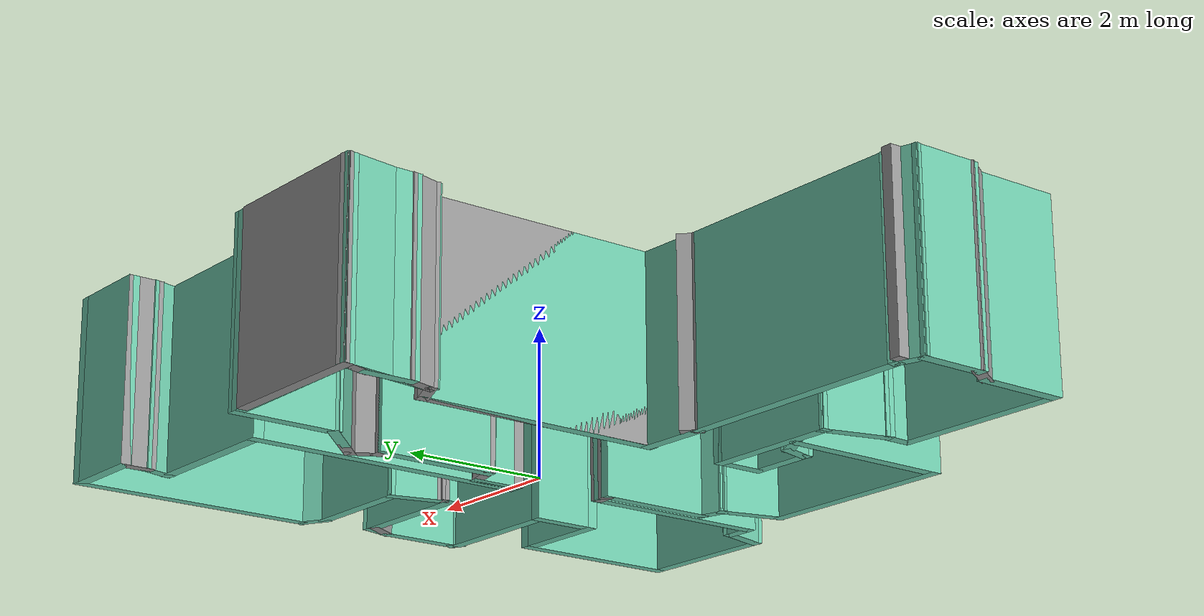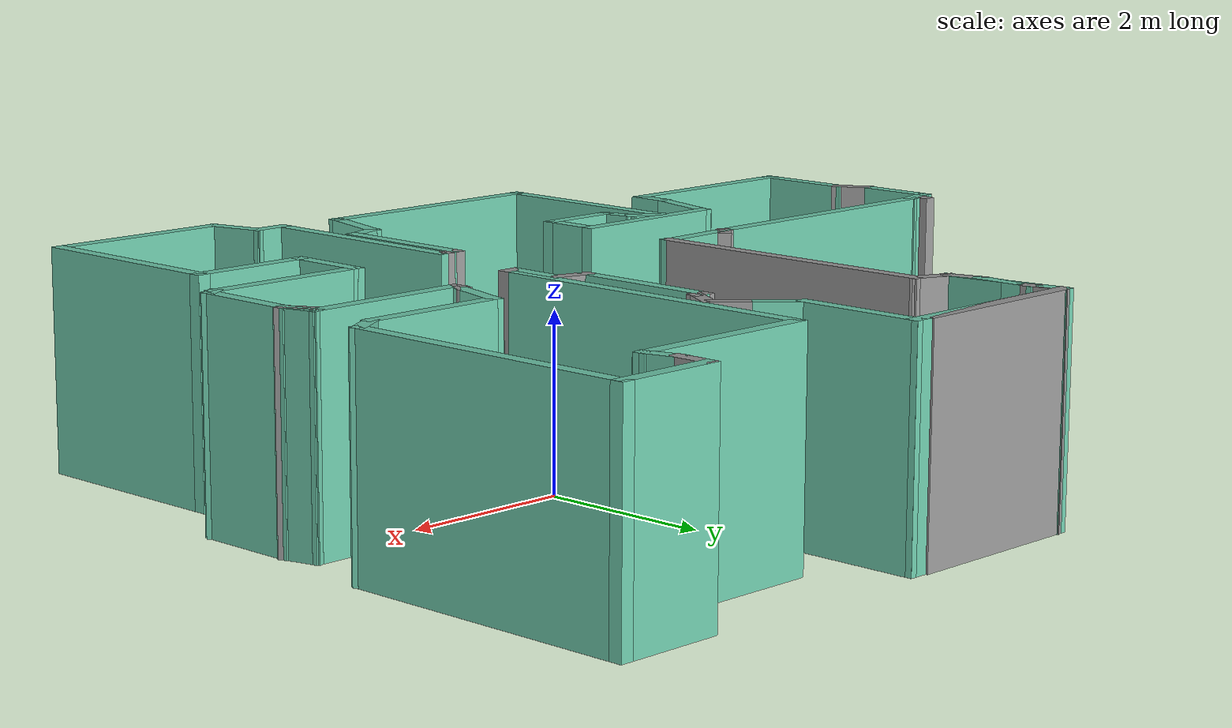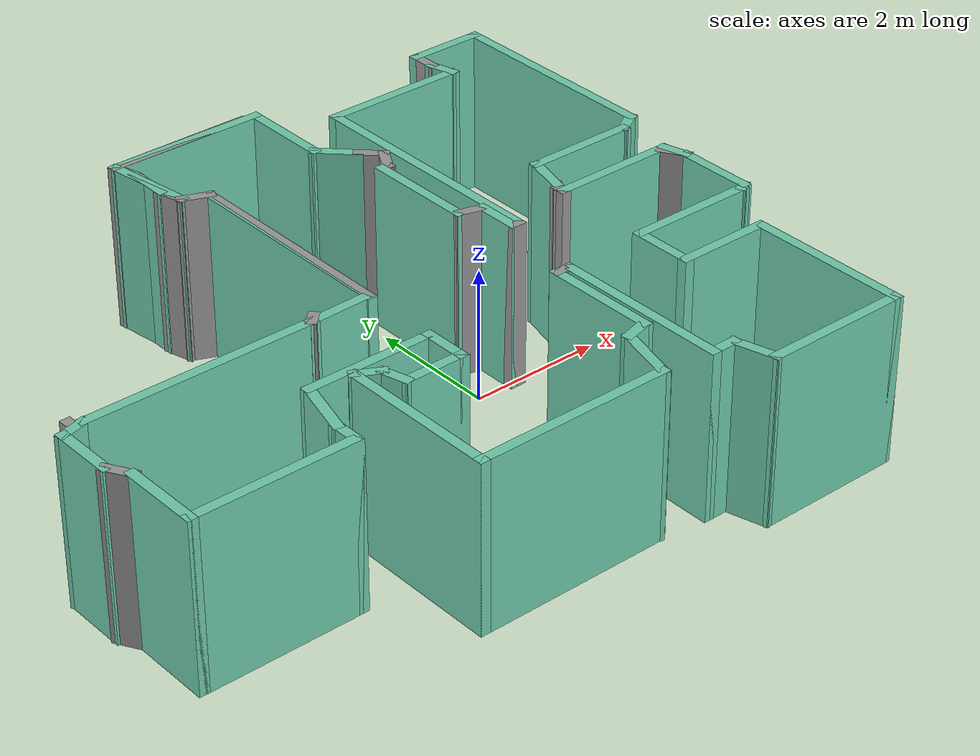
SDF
<?xml version='1.0'?>
<sdf version='1.6'>
  <model name='map_77'>
    <pose frame=''>-1.39686 0.071104 0 0 -0 0</pose>
    <link name='Wall_0'>
      <collision name='Wall_0_Collision'>
        <geometry>
          <box>
            <size>2.25 0.15 2.5</size>
          </box>
        </geometry>
        <pose frame=''>0 0 1.25 0 -0 0</pose>
      </collision>
      <visual name='Wall_0_Visual'>
        <pose frame=''>0 0 1.25 0 -0 0</pose>
        <geometry>
          <box>
            <size>2.25 0.15 2.5</size>
          </box>
        </geometry>
        <material>
          <script>
            <uri>file://media/materials/scripts/gazebo.material</uri>
            <name>Gazebo/Grey</name>
          </script>
          <ambient>1 1 1 1</ambient>
        </material>
        <meta>
          <layer>0</layer>
        </meta>
      </visual>
      <pose frame=''>-0.055748 4.53933 0 0 -0 3.14159</pose>
    </link>
    <link name='Wall_1'>
      <collision name='Wall_1_Collision'>
        <geometry>
          <box>
            <size>0.5 0.15 2.5</size>
          </box>
        </geometry>
        <pose frame=''>0 0 1.25 0 -0 0</pose>
      </collision>
      <visual name='Wall_1_Visual'>
        <pose frame=''>0 0 1.25 0 -0 0</pose>
        <geometry>
          <box>
            <size>0.5 0.15 2.5</size>
          </box>
        </geometry>
        <material>
          <script>
            <uri>file://media/materials/scripts/gazebo.material</uri>
            <name>Gazebo/Grey</name>
          </script>
          <ambient>1 1 1 1</ambient>
        </material>
        <meta>
          <layer>0</layer>
        </meta>
      </visual>
      <pose frame=''>-1.06045 4.37029 0 0 -0 -1.309</pose>
    </link>
    <link name='Wall_10'>
      <collision name='Wall_10_Collision'>
        <geometry>
          <box>
            <size>0.5 0.15 2.5</size>
          </box>
        </geometry>
        <pose frame=''>0 0 1.25 0 -0 0</pose>
      </collision>
      <visual name='Wall_10_Visual'>
        <pose frame=''>0 0 1.25 0 -0 0</pose>
        <geometry>
          <box>
            <size>0.5 0.15 2.5</size>
          </box>
        </geometry>
        <material>
          <script>
            <uri>file://media/materials/scripts/gazebo.material</uri>
            <name>Gazebo/Grey</name>
          </script>
          <ambient>0.435294 0.796078 0.67451 1</ambient>
        </material>
        <meta>
          <layer>0</layer>
        </meta>
      </visual>
      <pose frame=''>-4.9905 -0.307109 0 0 -0 -2.87979</pose>
    </link>
    <link name='Wall_11'>
      <collision name='Wall_11_Collision'>
        <geometry>
          <box>
            <size>1 0.15 2.5</size>
          </box>
        </geometry>
        <pose frame=''>0 0 1.25 0 -0 0</pose>
      </collision>
      <visual name='Wall_11_Visual'>
        <pose frame=''>0 0 1.25 0 -0 0</pose>
        <geometry>
          <box>
            <size>1 0.15 2.5</size>
          </box>
        </geometry>
        <material>
          <script>
            <uri>file://media/materials/scripts/gazebo.material</uri>
            <name>Gazebo/Grey</name>
          </script>
          <ambient>0.435294 0.796078 0.67451 1</ambient>
        </material>
        <meta>
          <layer>0</layer>
        </meta>
      </visual>
      <pose frame=''>-5.15954 -0.777402 0 0 -0 -1.5708</pose>
    </link>
    <link name='Wall_12'>
      <collision name='Wall_12_Collision'>
        <geometry>
          <box>
            <size>0.5 0.15 2.5</size>
          </box>
        </geometry>
        <pose frame=''>0 0 1.25 0 -0 0</pose>
      </collision>
      <visual name='Wall_12_Visual'>
        <pose frame=''>0 0 1.25 0 -0 0</pose>
        <geometry>
          <box>
            <size>0.5 0.15 2.5</size>
          </box>
        </geometry>
        <material>
          <script>
            <uri>file://media/materials/scripts/gazebo.material</uri>
            <name>Gazebo/Grey</name>
          </script>
          <ambient>1 1 1 1</ambient>
        </material>
        <meta>
          <layer>0</layer>
        </meta>
      </visual>
      <pose frame=''>-5.07204 -1.35396 0 0 -0 -1.0472</pose>
    </link>
    <link name='Wall_13'>
      <collision name='Wall_13_Collision'>
        <geometry>
          <box>
            <size>1.25 0.15 2.5</size>
          </box>
        </geometry>
        <pose frame=''>0 0 1.25 0 -0 0</pose>
      </collision>
      <visual name='Wall_13_Visual'>
        <pose frame=''>0 0 1.25 0 -0 0</pose>
        <geometry>
          <box>
            <size>1.25 0.15 2.5</size>
          </box>
        </geometry>
        <material>
          <script>
            <uri>file://media/materials/scripts/gazebo.material</uri>
            <name>Gazebo/Grey</name>
          </script>
          <ambient>0.435294 0.796078 0.67451 1</ambient>
        </material>
        <meta>
          <layer>0</layer>
        </meta>
      </visual>
      <pose frame=''>-4.98454 -2.05551 0 0 -0 -1.5708</pose>
    </link>
    <link name='Wall_14'>
      <collision name='Wall_14_Collision'>
        <geometry>
          <box>
            <size>2.5 0.15 2.5</size>
          </box>
        </geometry>
        <pose frame=''>0 0 1.25 0 -0 0</pose>
      </collision>
      <visual name='Wall_14_Visual'>
        <pose frame=''>0 0 1.25 0 -0 0</pose>
        <geometry>
          <box>
            <size>2.5 0.15 2.5</size>
          </box>
        </geometry>
        <material>
          <script>
            <uri>file://media/materials/scripts/gazebo.material</uri>
            <name>Gazebo/Grey</name>
          </script>
          <ambient>0.435294 0.796078 0.67451 1</ambient>
        </material>
        <meta>
          <layer>0</layer>
        </meta>
      </visual>
      <pose frame=''>-3.80954 -2.60551 0 0 -0 0</pose>
    </link>
    <link name='Wall_15'>
      <collision name='Wall_15_Collision'>
        <geometry>
          <box>
            <size>0.5 0.15 2.5</size>
          </box>
        </geometry>
        <pose frame=''>0 0 1.25 0 -0 0</pose>
      </collision>
      <visual name='Wall_15_Visual'>
        <pose frame=''>0 0 1.25 0 -0 0</pose>
        <geometry>
          <box>
            <size>0.5 0.15 2.5</size>
          </box>
        </geometry>
        <material>
          <script>
            <uri>file://media/materials/scripts/gazebo.material</uri>
            <name>Gazebo/Grey</name>
          </script>
          <ambient>0.435294 0.796078 0.67451 1</ambient>
        </material>
        <meta>
          <layer>0</layer>
        </meta>
      </visual>
      <pose frame=''>-2.63454 -2.43051 0 0 -0 1.5708</pose>
    </link>
    <link name='Wall_16'>
      <collision name='Wall_16_Collision'>
        <geometry>
          <box>
            <size>1 0.15 2.5</size>
          </box>
        </geometry>
        <pose frame=''>0 0 1.25 0 -0 0</pose>
      </collision>
      <visual name='Wall_16_Visual'>
        <pose frame=''>0 0 1.25 0 -0 0</pose>
        <geometry>
          <box>
            <size>1 0.15 2.5</size>
          </box>
        </geometry>
        <material>
          <script>
            <uri>file://media/materials/scripts/gazebo.material</uri>
            <name>Gazebo/Grey</name>
          </script>
          <ambient>0.435294 0.796078 0.67451 1</ambient>
        </material>
        <meta>
          <layer>0</layer>
        </meta>
      </visual>
      <pose frame=''>-2.52454 -1.84499 0 0 -0 1.309</pose>
    </link>
    <link name='Wall_17'>
      <collision name='Wall_17_Collision'>
        <geometry>
          <box>
            <size>2 0.15 2.5</size>
          </box>
        </geometry>
        <pose frame=''>0 0 1.25 0 -0 0</pose>
      </collision>
      <visual name='Wall_17_Visual'>
        <pose frame=''>0 0 1.25 0 -0 0</pose>
        <geometry>
          <box>
            <size>2 0.15 2.5</size>
          </box>
        </geometry>
        <material>
          <script>
            <uri>file://media/materials/scripts/gazebo.material</uri>
            <name>Gazebo/Grey</name>
          </script>
          <ambient>0.435294 0.796078 0.67451 1</ambient>
        </material>
        <meta>
          <layer>0</layer>
        </meta>
      </visual>
      <pose frame=''>-1.48954 -1.43447 0 0 -0 0</pose>
    </link>
    <link name='Wall_18'>
      <collision name='Wall_18_Collision'>
        <geometry>
          <box>
            <size>0.75 0.15 2.5</size>
          </box>
        </geometry>
        <pose frame=''>0 0 1.25 0 -0 0</pose>
      </collision>
      <visual name='Wall_18_Visual'>
        <pose frame=''>0 0 1.25 0 -0 0</pose>
        <geometry>
          <box>
            <size>0.75 0.15 2.5</size>
          </box>
        </geometry>
        <material>
          <script>
            <uri>file://media/materials/scripts/gazebo.material</uri>
            <name>Gazebo/Grey</name>
          </script>
          <ambient>0.435294 0.796078 0.67451 1</ambient>
        </material>
        <meta>
          <layer>0</layer>
        </meta>
      </visual>
      <pose frame=''>-0.564543 -1.73447 0 0 -0 -1.5708</pose>
    </link>
    <link name='Wall_19'>
      <collision name='Wall_19_Collision'>
        <geometry>
          <box>
            <size>1 0.15 2.5</size>
          </box>
        </geometry>
        <pose frame=''>0 0 1.25 0 -0 0</pose>
      </collision>
      <visual name='Wall_19_Visual'>
        <pose frame=''>0 0 1.25 0 -0 0</pose>
        <geometry>
          <box>
            <size>1 0.15 2.5</size>
          </box>
        </geometry>
        <material>
          <script>
            <uri>file://media/materials/scripts/gazebo.material</uri>
            <name>Gazebo/Grey</name>
          </script>
          <ambient>0.435294 0.796078 0.67451 1</ambient>
        </material>
        <meta>
          <layer>0</layer>
        </meta>
      </visual>
      <pose frame=''>-0.989543 -2.03447 0 0 -0 3.14159</pose>
    </link>
    <link name='Wall_2'>
      <collision name='Wall_2_Collision'>
        <geometry>
          <box>
            <size>0.75 0.15 2.5</size>
          </box>
        </geometry>
        <pose frame=''>0 0 1.25 0 -0 0</pose>
      </collision>
      <visual name='Wall_2_Visual'>
        <pose frame=''>0 0 1.25 0 -0 0</pose>
        <geometry>
          <box>
            <size>0.75 0.15 2.5</size>
          </box>
        </geometry>
        <material>
          <script>
            <uri>file://media/materials/scripts/gazebo.material</uri>
            <name>Gazebo/Grey</name>
          </script>
          <ambient>0.435294 0.796078 0.67451 1</ambient>
        </material>
        <meta>
          <layer>0</layer>
        </meta>
      </visual>
      <pose frame=''>-1.01516 3.90126 0 0 -0 -1.5708</pose>
    </link>
    <link name='Wall_20'>
      <collision name='Wall_20_Collision'>
        <geometry>
          <box>
            <size>0.5 0.15 2.5</size>
          </box>
        </geometry>
        <pose frame=''>0 0 1.25 0 -0 0</pose>
      </collision>
      <visual name='Wall_20_Visual'>
        <pose frame=''>0 0 1.25 0 -0 0</pose>
        <geometry>
          <box>
            <size>0.5 0.15 2.5</size>
          </box>
        </geometry>
        <material>
          <script>
            <uri>file://media/materials/scripts/gazebo.material</uri>
            <name>Gazebo/Grey</name>
          </script>
          <ambient>0.435294 0.796078 0.67451 1</ambient>
        </material>
        <meta>
          <layer>0</layer>
        </meta>
      </visual>
      <pose frame=''>-1.45984 -1.86544 0 0 -0 1.8326</pose>
    </link>
    <link name='Wall_21'>
      <collision name='Wall_21_Collision'>
        <geometry>
          <box>
            <size>0.5 0.15 2.5</size>
          </box>
        </geometry>
        <pose frame=''>0 0 1.25 0 -0 0</pose>
      </collision>
      <visual name='Wall_21_Visual'>
        <pose frame=''>0 0 1.25 0 -0 0</pose>
        <geometry>
          <box>
            <size>0.5 0.15 2.5</size>
          </box>
        </geometry>
        <material>
          <script>
            <uri>file://media/materials/scripts/gazebo.material</uri>
            <name>Gazebo/Grey</name>
          </script>
          <ambient>0.435294 0.796078 0.67451 1</ambient>
        </material>
        <meta>
          <layer>0</layer>
        </meta>
      </visual>
      <pose frame=''>-1.65668 -1.6089 0 0 -0 2.61799</pose>
    </link>
    <link name='Wall_22'>
      <collision name='Wall_22_Collision'>
        <geometry>
          <box>
            <size>2.5 0.15 2.5</size>
          </box>
        </geometry>
        <pose frame=''>0 0 1.25 0 -0 0</pose>
      </collision>
      <visual name='Wall_22_Visual'>
        <pose frame=''>0 0 1.25 0 -0 0</pose>
        <geometry>
          <box>
            <size>2.5 0.15 2.5</size>
          </box>
        </geometry>
        <material>
          <script>
            <uri>file://media/materials/scripts/gazebo.material</uri>
            <name>Gazebo/Grey</name>
          </script>
          <ambient>0.435294 0.796078 0.67451 1</ambient>
        </material>
        <meta>
          <layer>0</layer>
        </meta>
      </visual>
      <pose frame=''>-1.80824 -2.6964 0 0 -0 -1.5708</pose>
    </link>
    <link name='Wall_23'>
      <collision name='Wall_23_Collision'>
        <geometry>
          <box>
            <size>3 0.15 2.5</size>
          </box>
        </geometry>
        <pose frame=''>0 0 1.25 0 -0 0</pose>
      </collision>
      <visual name='Wall_23_Visual'>
        <pose frame=''>0 0 1.25 0 -0 0</pose>
        <geometry>
          <box>
            <size>3 0.15 2.5</size>
          </box>
        </geometry>
        <material>
          <script>
            <uri>file://media/materials/scripts/gazebo.material</uri>
            <name>Gazebo/Grey</name>
          </script>
          <ambient>0.435294 0.796078 0.67451 1</ambient>
        </material>
        <meta>
          <layer>0</layer>
        </meta>
      </visual>
      <pose frame=''>-0.383239 -3.8714 0 0 -0 0</pose>
    </link>
    <link name='Wall_24'>
      <collision name='Wall_24_Collision'>
        <geometry>
          <box>
            <size>1 0.15 2.5</size>
          </box>
        </geometry>
        <pose frame=''>0 0 1.25 0 -0 0</pose>
      </collision>
      <visual name='Wall_24_Visual'>
        <pose frame=''>0 0 1.25 0 -0 0</pose>
        <geometry>
          <box>
            <size>1 0.15 2.5</size>
          </box>
        </geometry>
        <material>
          <script>
            <uri>file://media/materials/scripts/gazebo.material</uri>
            <name>Gazebo/Grey</name>
          </script>
          <ambient>0.435294 0.796078 0.67451 1</ambient>
        </material>
        <meta>
          <layer>0</layer>
        </meta>
      </visual>
      <pose frame=''>1.15176 -3.46088 0 0 -0 1.309</pose>
    </link>
    <link name='Wall_25'>
      <collision name='Wall_25_Collision'>
        <geometry>
          <box>
            <size>0.5 0.15 2.5</size>
          </box>
        </geometry>
        <pose frame=''>0 0 1.25 0 -0 0</pose>
      </collision>
      <visual name='Wall_25_Visual'>
        <pose frame=''>0 0 1.25 0 -0 0</pose>
        <geometry>
          <box>
            <size>0.5 0.15 2.5</size>
          </box>
        </geometry>
        <material>
          <script>
            <uri>file://media/materials/scripts/gazebo.material</uri>
            <name>Gazebo/Grey</name>
          </script>
          <ambient>0.435294 0.796078 0.67451 1</ambient>
        </material>
        <meta>
          <layer>0</layer>
        </meta>
      </visual>
      <pose frame=''>1.4308 -3.00507 0 0 -0 0.261799</pose>
    </link>
    <link name='Wall_26'>
      <collision name='Wall_26_Collision'>
        <geometry>
          <box>
            <size>1.75 0.15 2.5</size>
          </box>
        </geometry>
        <pose frame=''>0 0 1.25 0 -0 0</pose>
      </collision>
      <visual name='Wall_26_Visual'>
        <pose frame=''>0 0 1.25 0 -0 0</pose>
        <geometry>
          <box>
            <size>1.75 0.15 2.5</size>
          </box>
        </geometry>
        <material>
          <script>
            <uri>file://media/materials/scripts/gazebo.material</uri>
            <name>Gazebo/Grey</name>
          </script>
          <ambient>0.435294 0.796078 0.67451 1</ambient>
        </material>
        <meta>
          <layer>0</layer>
        </meta>
      </visual>
      <pose frame=''>1.59983 -2.15978 0 0 -0 1.5708</pose>
    </link>
    <link name='Wall_27'>
      <collision name='Wall_27_Collision'>
        <geometry>
          <box>
            <size>0.25 0.15 2.5</size>
          </box>
        </geometry>
        <pose frame=''>0 0 1.25 0 -0 0</pose>
      </collision>
      <visual name='Wall_27_Visual'>
        <pose frame=''>0 0 1.25 0 -0 0</pose>
        <geometry>
          <box>
            <size>0.25 0.15 2.5</size>
          </box>
        </geometry>
        <material>
          <script>
            <uri>file://media/materials/scripts/gazebo.material</uri>
            <name>Gazebo/Grey</name>
          </script>
          <ambient>1 1 1 1</ambient>
        </material>
        <meta>
          <layer>0</layer>
        </meta>
      </visual>
      <pose frame=''>1.64983 -1.35978 0 0 -0 0</pose>
    </link>
    <link name='Wall_28'>
      <collision name='Wall_28_Collision'>
        <geometry>
          <box>
            <size>0.25 0.15 2.5</size>
          </box>
        </geometry>
        <pose frame=''>0 0 1.25 0 -0 0</pose>
      </collision>
      <visual name='Wall_28_Visual'>
        <pose frame=''>0 0 1.25 0 -0 0</pose>
        <geometry>
          <box>
            <size>0.25 0.15 2.5</size>
          </box>
        </geometry>
        <material>
          <script>
            <uri>file://media/materials/scripts/gazebo.material</uri>
            <name>Gazebo/Grey</name>
          </script>
          <ambient>1 1 1 1</ambient>
        </material>
        <meta>
          <layer>0</layer>
        </meta>
      </visual>
      <pose frame=''>1.74983 -1.35978 0 0 -0 0</pose>
    </link>
    <link name='Wall_29'>
      <collision name='Wall_29_Collision'>
        <geometry>
          <box>
            <size>2.75 0.15 2.5</size>
          </box>
        </geometry>
        <pose frame=''>0 0 1.25 0 -0 0</pose>
      </collision>
      <visual name='Wall_29_Visual'>
        <pose frame=''>0 0 1.25 0 -0 0</pose>
        <geometry>
          <box>
            <size>2.75 0.15 2.5</size>
          </box>
        </geometry>
        <material>
          <script>
            <uri>file://media/materials/scripts/gazebo.material</uri>
            <name>Gazebo/Grey</name>
          </script>
          <ambient>0.435294 0.796078 0.67451 1</ambient>
        </material>
        <meta>
          <layer>0</layer>
        </meta>
      </visual>
      <pose frame=''>1.79983 -2.65978 0 0 -0 -1.5708</pose>
    </link>
    <link name='Wall_3'>
      <collision name='Wall_3_Collision'>
        <geometry>
          <box>
            <size>0.5 0.15 2.5</size>
          </box>
        </geometry>
        <pose frame=''>0 0 1.25 0 -0 0</pose>
      </collision>
      <visual name='Wall_3_Visual'>
        <pose frame=''>0 0 1.25 0 -0 0</pose>
        <geometry>
          <box>
            <size>0.5 0.15 2.5</size>
          </box>
        </geometry>
        <material>
          <script>
            <uri>file://media/materials/scripts/gazebo.material</uri>
            <name>Gazebo/Grey</name>
          </script>
          <ambient>1 1 1 1</ambient>
        </material>
        <meta>
          <layer>0</layer>
        </meta>
      </visual>
      <pose frame=''>-0.969868 3.43222 0 0 -0 -1.309</pose>
    </link>
    <link name='Wall_30'>
      <collision name='Wall_30_Collision'>
        <geometry>
          <box>
            <size>0.5 0.15 2.5</size>
          </box>
        </geometry>
        <pose frame=''>0 0 1.25 0 -0 0</pose>
      </collision>
      <visual name='Wall_30_Visual'>
        <pose frame=''>0 0 1.25 0 -0 0</pose>
        <geometry>
          <box>
            <size>0.5 0.15 2.5</size>
          </box>
        </geometry>
        <material>
          <script>
            <uri>file://media/materials/scripts/gazebo.material</uri>
            <name>Gazebo/Grey</name>
          </script>
          <ambient>0.435294 0.796078 0.67451 1</ambient>
        </material>
        <meta>
          <layer>0</layer>
        </meta>
      </visual>
      <pose frame=''>1.97483 -3.95978 0 0 -0 0</pose>
    </link>
    <link name='Wall_31'>
      <collision name='Wall_31_Collision'>
        <geometry>
          <box>
            <size>0.75 0.15 2.5</size>
          </box>
        </geometry>
        <pose frame=''>0 0 1.25 0 -0 0</pose>
      </collision>
      <visual name='Wall_31_Visual'>
        <pose frame=''>0 0 1.25 0 -0 0</pose>
        <geometry>
          <box>
            <size>0.75 0.15 2.5</size>
          </box>
        </geometry>
        <material>
          <script>
            <uri>file://media/materials/scripts/gazebo.material</uri>
            <name>Gazebo/Grey</name>
          </script>
          <ambient>0.435294 0.796078 0.67451 1</ambient>
        </material>
        <meta>
          <layer>0</layer>
        </meta>
      </visual>
      <pose frame=''>2.22748 -4.24955 0 0 -0 -1.309</pose>
    </link>
    <link name='Wall_32'>
      <collision name='Wall_32_Collision'>
        <geometry>
          <box>
            <size>2.25 0.15 2.5</size>
          </box>
        </geometry>
        <pose frame=''>0 0 1.25 0 -0 0</pose>
      </collision>
      <visual name='Wall_32_Visual'>
        <pose frame=''>0 0 1.25 0 -0 0</pose>
        <geometry>
          <box>
            <size>2.25 0.15 2.5</size>
          </box>
        </geometry>
        <material>
          <script>
            <uri>file://media/materials/scripts/gazebo.material</uri>
            <name>Gazebo/Grey</name>
          </script>
          <ambient>0.435294 0.796078 0.67451 1</ambient>
        </material>
        <meta>
          <layer>0</layer>
        </meta>
      </visual>
      <pose frame=''>3.35512 -4.53933 0 0 -0 0</pose>
    </link>
    <link name='Wall_33'>
      <collision name='Wall_33_Collision'>
        <geometry>
          <box>
            <size>2.5 0.15 2.5</size>
          </box>
        </geometry>
        <pose frame=''>0 0 1.25 0 -0 0</pose>
      </collision>
      <visual name='Wall_33_Visual'>
        <pose frame=''>0 0 1.25 0 -0 0</pose>
        <geometry>
          <box>
            <size>2.5 0.15 2.5</size>
          </box>
        </geometry>
        <material>
          <script>
            <uri>file://media/materials/scripts/gazebo.material</uri>
            <name>Gazebo/Grey</name>
          </script>
          <ambient>0.435294 0.796078 0.67451 1</ambient>
        </material>
        <meta>
          <layer>0</layer>
        </meta>
      </visual>
      <pose frame=''>4.40512 -3.36433 0 0 -0 1.5708</pose>
    </link>
    <link name='Wall_34'>
      <collision name='Wall_34_Collision'>
        <geometry>
          <box>
            <size>1.5 0.15 2.5</size>
          </box>
        </geometry>
        <pose frame=''>0 0 1.25 0 -0 0</pose>
      </collision>
      <visual name='Wall_34_Visual'>
        <pose frame=''>0 0 1.25 0 -0 0</pose>
        <geometry>
          <box>
            <size>1.5 0.15 2.5</size>
          </box>
        </geometry>
        <material>
          <script>
            <uri>file://media/materials/scripts/gazebo.material</uri>
            <name>Gazebo/Grey</name>
          </script>
          <ambient>0.435294 0.796078 0.67451 1</ambient>
        </material>
        <meta>
          <layer>0</layer>
        </meta>
      </visual>
      <pose frame=''>3.73012 -2.18933 0 0 -0 3.14159</pose>
    </link>
    <link name='Wall_35'>
      <collision name='Wall_35_Collision'>
        <geometry>
          <box>
            <size>1 0.15 2.5</size>
          </box>
        </geometry>
        <pose frame=''>0 0 1.25 0 -0 0</pose>
      </collision>
      <visual name='Wall_35_Visual'>
        <pose frame=''>0 0 1.25 0 -0 0</pose>
        <geometry>
          <box>
            <size>1 0.15 2.5</size>
          </box>
        </geometry>
        <material>
          <script>
            <uri>file://media/materials/scripts/gazebo.material</uri>
            <name>Gazebo/Grey</name>
          </script>
          <ambient>0.435294 0.796078 0.67451 1</ambient>
        </material>
        <meta>
          <layer>0</layer>
        </meta>
      </visual>
      <pose frame=''>3.05512 -1.76433 0 0 -0 1.5708</pose>
    </link>
    <link name='Wall_36'>
      <collision name='Wall_36_Collision'>
        <geometry>
          <box>
            <size>2 0.15 2.5</size>
          </box>
        </geometry>
        <pose frame=''>0 0 1.25 0 -0 0</pose>
      </collision>
      <visual name='Wall_36_Visual'>
        <pose frame=''>0 0 1.25 0 -0 0</pose>
        <geometry>
          <box>
            <size>2 0.15 2.5</size>
          </box>
        </geometry>
        <material>
          <script>
            <uri>file://media/materials/scripts/gazebo.material</uri>
            <name>Gazebo/Grey</name>
          </script>
          <ambient>0.435294 0.796078 0.67451 1</ambient>
        </material>
        <meta>
          <layer>0</layer>
        </meta>
      </visual>
      <pose frame=''>3.98012 -1.33933 0 0 -0 0</pose>
    </link>
    <link name='Wall_37'>
      <collision name='Wall_37_Collision'>
        <geometry>
          <box>
            <size>0.25 0.15 2.5</size>
          </box>
        </geometry>
        <pose frame=''>0 0 1.25 0 -0 0</pose>
      </collision>
      <visual name='Wall_37_Visual'>
        <pose frame=''>0 0 1.25 0 -0 0</pose>
        <geometry>
          <box>
            <size>0.25 0.15 2.5</size>
          </box>
        </geometry>
        <material>
          <script>
            <uri>file://media/materials/scripts/gazebo.material</uri>
            <name>Gazebo/Grey</name>
          </script>
          <ambient>0.435294 0.796078 0.67451 1</ambient>
        </material>
        <meta>
          <layer>0</layer>
        </meta>
      </visual>
      <pose frame=''>4.94842 -1.31433 0 0 -0 0.523599</pose>
    </link>
    <link name='Wall_38'>
      <collision name='Wall_38_Collision'>
        <geometry>
          <box>
            <size>1.25 0.15 2.5</size>
          </box>
        </geometry>
        <pose frame=''>0 0 1.25 0 -0 0</pose>
      </collision>
      <visual name='Wall_38_Visual'>
        <pose frame=''>0 0 1.25 0 -0 0</pose>
        <geometry>
          <box>
            <size>1.25 0.15 2.5</size>
          </box>
        </geometry>
        <material>
          <script>
            <uri>file://media/materials/scripts/gazebo.material</uri>
            <name>Gazebo/Grey</name>
          </script>
          <ambient>0.435294 0.796078 0.67451 1</ambient>
        </material>
        <meta>
          <layer>0</layer>
        </meta>
      </visual>
      <pose frame=''>4.99173 -0.739332 0 0 -0 1.5708</pose>
    </link>
    <link name='Wall_39'>
      <collision name='Wall_39_Collision'>
        <geometry>
          <box>
            <size>0.5 0.15 2.5</size>
          </box>
        </geometry>
        <pose frame=''>0 0 1.25 0 -0 0</pose>
      </collision>
      <visual name='Wall_39_Visual'>
        <pose frame=''>0 0 1.25 0 -0 0</pose>
        <geometry>
          <box>
            <size>0.5 0.15 2.5</size>
          </box>
        </geometry>
        <material>
          <script>
            <uri>file://media/materials/scripts/gazebo.material</uri>
            <name>Gazebo/Grey</name>
          </script>
          <ambient>1 1 1 1</ambient>
        </material>
        <meta>
          <layer>0</layer>
        </meta>
      </visual>
      <pose frame=''>4.90423 -0.037778 0 0 -0 2.0944</pose>
    </link>
    <link name='Wall_4'>
      <collision name='Wall_4_Collision'>
        <geometry>
          <box>
            <size>0.535978 0.15 2.5</size>
          </box>
        </geometry>
        <pose frame=''>0 0 1.25 0 -0 0</pose>
      </collision>
      <visual name='Wall_4_Visual'>
        <pose frame=''>0 0 1.25 0 -0 0</pose>
        <geometry>
          <box>
            <size>0.535978 0.15 2.5</size>
          </box>
        </geometry>
        <material>
          <script>
            <uri>file://media/materials/scripts/gazebo.material</uri>
            <name>Gazebo/Grey</name>
          </script>
          <ambient>1 1 1 1</ambient>
        </material>
        <meta>
          <layer>0</layer>
        </meta>
      </visual>
      <pose frame=''>-0.74642 3.18898 0 0 -0 -0.394642</pose>
    </link>
    <link name='Wall_42'>
      <collision name='Wall_42_Collision'>
        <geometry>
          <box>
            <size>0.5 0.15 2.5</size>
          </box>
        </geometry>
        <pose frame=''>0 0 1.25 0 -0 0</pose>
      </collision>
      <visual name='Wall_42_Visual'>
        <pose frame=''>0 0 1.25 0 -0 0</pose>
        <geometry>
          <box>
            <size>0.5 0.15 2.5</size>
          </box>
        </geometry>
        <material>
          <script>
            <uri>file://media/materials/scripts/gazebo.material</uri>
            <name>Gazebo/Grey</name>
          </script>
          <ambient>0.435294 0.796078 0.67451 1</ambient>
        </material>
        <meta>
          <layer>0</layer>
        </meta>
      </visual>
      <pose frame=''>4.94643 -0.020295 0 0 -0 1.8326</pose>
    </link>
    <link name='Wall_43'>
      <collision name='Wall_43_Collision'>
        <geometry>
          <box>
            <size>2 0.15 2.5</size>
          </box>
        </geometry>
        <pose frame=''>0 0 1.25 0 -0 0</pose>
      </collision>
      <visual name='Wall_43_Visual'>
        <pose frame=''>0 0 1.25 0 -0 0</pose>
        <geometry>
          <box>
            <size>2 0.15 2.5</size>
          </box>
        </geometry>
        <material>
          <script>
            <uri>file://media/materials/scripts/gazebo.material</uri>
            <name>Gazebo/Grey</name>
          </script>
          <ambient>0.435294 0.796078 0.67451 1</ambient>
        </material>
        <meta>
          <layer>0</layer>
        </meta>
      </visual>
      <pose frame=''>3.97614 0.148742 0 0 -0 3.14159</pose>
    </link>
    <link name='Wall_44'>
      <collision name='Wall_44_Collision'>
        <geometry>
          <box>
            <size>0.25 0.15 2.5</size>
          </box>
        </geometry>
        <pose frame=''>0 0 1.25 0 -0 0</pose>
      </collision>
      <visual name='Wall_44_Visual'>
        <pose frame=''>0 0 1.25 0 -0 0</pose>
        <geometry>
          <box>
            <size>0.25 0.15 2.5</size>
          </box>
        </geometry>
        <material>
          <script>
            <uri>file://media/materials/scripts/gazebo.material</uri>
            <name>Gazebo/Grey</name>
          </script>
          <ambient>1 1 1 1</ambient>
        </material>
        <meta>
          <layer>0</layer>
        </meta>
      </visual>
      <pose frame=''>3.05114 0.198742 0 0 -0 1.5708</pose>
    </link>
    <link name='Wall_45'>
      <collision name='Wall_45_Collision'>
        <geometry>
          <box>
            <size>0.25 0.15 2.5</size>
          </box>
        </geometry>
        <pose frame=''>0 0 1.25 0 -0 0</pose>
      </collision>
      <visual name='Wall_45_Visual'>
        <pose frame=''>0 0 1.25 0 -0 0</pose>
        <geometry>
          <box>
            <size>0.25 0.15 2.5</size>
          </box>
        </geometry>
        <material>
          <script>
            <uri>file://media/materials/scripts/gazebo.material</uri>
            <name>Gazebo/Grey</name>
          </script>
          <ambient>1 1 1 1</ambient>
        </material>
        <meta>
          <layer>0</layer>
        </meta>
      </visual>
      <pose frame=''>3.07614 0.292043 0 0 -0 1.0472</pose>
    </link>
    <link name='Wall_46'>
      <collision name='Wall_46_Collision'>
        <geometry>
          <box>
            <size>0.75 0.15 2.5</size>
          </box>
        </geometry>
        <pose frame=''>0 0 1.25 0 -0 0</pose>
      </collision>
      <visual name='Wall_46_Visual'>
        <pose frame=''>0 0 1.25 0 -0 0</pose>
        <geometry>
          <box>
            <size>0.75 0.15 2.5</size>
          </box>
        </geometry>
        <material>
          <script>
            <uri>file://media/materials/scripts/gazebo.material</uri>
            <name>Gazebo/Grey</name>
          </script>
          <ambient>0.435294 0.796078 0.67451 1</ambient>
        </material>
        <meta>
          <layer>0</layer>
        </meta>
      </visual>
      <pose frame=''>3.17878 0.625122 0 0 -0 1.309</pose>
    </link>
    <link name='Wall_47'>
      <collision name='Wall_47_Collision'>
        <geometry>
          <box>
            <size>1.75 0.15 2.5</size>
          </box>
        </geometry>
        <pose frame=''>0 0 1.25 0 -0 0</pose>
      </collision>
      <visual name='Wall_47_Visual'>
        <pose frame=''>0 0 1.25 0 -0 0</pose>
        <geometry>
          <box>
            <size>1.75 0.15 2.5</size>
          </box>
        </geometry>
        <material>
          <script>
            <uri>file://media/materials/scripts/gazebo.material</uri>
            <name>Gazebo/Grey</name>
          </script>
          <ambient>0.435294 0.796078 0.67451 1</ambient>
        </material>
        <meta>
          <layer>0</layer>
        </meta>
      </visual>
      <pose frame=''>4.05643 0.9149 0 0 -0 0</pose>
    </link>
    <link name='Wall_49'>
      <collision name='Wall_49_Collision'>
        <geometry>
          <box>
            <size>0.5 0.15 2.5</size>
          </box>
        </geometry>
        <pose frame=''>0 0 1.25 0 -0 0</pose>
      </collision>
      <visual name='Wall_49_Visual'>
        <pose frame=''>0 0 1.25 0 -0 0</pose>
        <geometry>
          <box>
            <size>0.5 0.15 2.5</size>
          </box>
        </geometry>
        <material>
          <script>
            <uri>file://media/materials/scripts/gazebo.material</uri>
            <name>Gazebo/Grey</name>
          </script>
          <ambient>0.435294 0.796078 0.67451 1</ambient>
        </material>
        <meta>
          <layer>0</layer>
        </meta>
      </visual>
      <pose frame=''>5.00798 1.0024 0 0 -0 0.523599</pose>
    </link>
    <link name='Wall_5'>
      <collision name='Wall_5_Collision'>
        <geometry>
          <box>
            <size>3.5 0.15 2.5</size>
          </box>
        </geometry>
        <pose frame=''>0 0 1.25 0 -0 0</pose>
      </collision>
      <visual name='Wall_5_Visual'>
        <pose frame=''>0 0 1.25 0 -0 0</pose>
        <geometry>
          <box>
            <size>3.5 0.15 2.5</size>
          </box>
        </geometry>
        <material>
          <script>
            <uri>file://media/materials/scripts/gazebo.material</uri>
            <name>Gazebo/Grey</name>
          </script>
          <ambient>1 1 1 1</ambient>
        </material>
        <meta>
          <layer>0</layer>
        </meta>
      </visual>
      <pose frame=''>-0.568265 1.43978 0 0 -0 -1.5708</pose>
    </link>
    <link name='Wall_50'>
      <collision name='Wall_50_Collision'>
        <geometry>
          <box>
            <size>3.5 0.15 2.5</size>
          </box>
        </geometry>
        <pose frame=''>0 0 1.25 0 -0 0</pose>
      </collision>
      <visual name='Wall_50_Visual'>
        <pose frame=''>0 0 1.25 0 -0 0</pose>
        <geometry>
          <box>
            <size>3.5 0.15 2.5</size>
          </box>
        </geometry>
        <material>
          <script>
            <uri>file://media/materials/scripts/gazebo.material</uri>
            <name>Gazebo/Grey</name>
          </script>
          <ambient>0.435294 0.796078 0.67451 1</ambient>
        </material>
        <meta>
          <layer>0</layer>
        </meta>
      </visual>
      <pose frame=''>5.15954 2.7649 0 0 -0 1.5708</pose>
    </link>
    <link name='Wall_51'>
      <collision name='Wall_51_Collision'>
        <geometry>
          <box>
            <size>1.25 0.15 2.5</size>
          </box>
        </geometry>
        <pose frame=''>0 0 1.25 0 -0 0</pose>
      </collision>
      <visual name='Wall_51_Visual'>
        <pose frame=''>0 0 1.25 0 -0 0</pose>
        <geometry>
          <box>
            <size>1.25 0.15 2.5</size>
          </box>
        </geometry>
        <material>
          <script>
            <uri>file://media/materials/scripts/gazebo.material</uri>
            <name>Gazebo/Grey</name>
          </script>
          <ambient>0.435294 0.796078 0.67451 1</ambient>
        </material>
        <meta>
          <layer>0</layer>
        </meta>
      </visual>
      <pose frame=''>4.60954 4.4399 0 0 -0 3.14159</pose>
    </link>
    <link name='Wall_52'>
      <collision name='Wall_52_Collision'>
        <geometry>
          <box>
            <size>0.5 0.15 2.5</size>
          </box>
        </geometry>
        <pose frame=''>0 0 1.25 0 -0 0</pose>
      </collision>
      <visual name='Wall_52_Visual'>
        <pose frame=''>0 0 1.25 0 -0 0</pose>
        <geometry>
          <box>
            <size>0.5 0.15 2.5</size>
          </box>
        </geometry>
        <material>
          <script>
            <uri>file://media/materials/scripts/gazebo.material</uri>
            <name>Gazebo/Grey</name>
          </script>
          <ambient>1 1 1 1</ambient>
        </material>
        <meta>
          <layer>0</layer>
        </meta>
      </visual>
      <pose frame=''>4.05954 4.2649 0 0 -0 -1.5708</pose>
    </link>
    <link name='Wall_56'>
      <collision name='Wall_56_Collision'>
        <geometry>
          <box>
            <size>0.5 0.15 2.5</size>
          </box>
        </geometry>
        <pose frame=''>0 0 1.25 0 -0 0</pose>
      </collision>
      <visual name='Wall_56_Visual'>
        <pose frame=''>0 0 1.25 0 -0 0</pose>
        <geometry>
          <box>
            <size>0.5 0.15 2.5</size>
          </box>
        </geometry>
        <material>
          <script>
            <uri>file://media/materials/scripts/gazebo.material</uri>
            <name>Gazebo/Grey</name>
          </script>
          <ambient>0.435294 0.796078 0.67451 1</ambient>
        </material>
        <meta>
          <layer>0</layer>
        </meta>
      </visual>
      <pose frame=''>4.10483 3.92086 0 0 -0 -1.309</pose>
    </link>
    <link name='Wall_57'>
      <collision name='Wall_57_Collision'>
        <geometry>
          <box>
            <size>2.25 0.15 2.5</size>
          </box>
        </geometry>
        <pose frame=''>0 0 1.25 0 -0 0</pose>
      </collision>
      <visual name='Wall_57_Visual'>
        <pose frame=''>0 0 1.25 0 -0 0</pose>
        <geometry>
          <box>
            <size>2.25 0.15 2.5</size>
          </box>
        </geometry>
        <material>
          <script>
            <uri>file://media/materials/scripts/gazebo.material</uri>
            <name>Gazebo/Grey</name>
          </script>
          <ambient>0.435294 0.796078 0.67451 1</ambient>
        </material>
        <meta>
          <layer>0</layer>
        </meta>
      </visual>
      <pose frame=''>3.10013 3.75183 0 0 -0 3.14159</pose>
    </link>
    <link name='Wall_58'>
      <collision name='Wall_58_Collision'>
        <geometry>
          <box>
            <size>4 0.15 2.5</size>
          </box>
        </geometry>
        <pose frame=''>0 0 1.25 0 -0 0</pose>
      </collision>
      <visual name='Wall_58_Visual'>
        <pose frame=''>0 0 1.25 0 -0 0</pose>
        <geometry>
          <box>
            <size>4 0.15 2.5</size>
          </box>
        </geometry>
        <material>
          <script>
            <uri>file://media/materials/scripts/gazebo.material</uri>
            <name>Gazebo/Grey</name>
          </script>
          <ambient>0.435294 0.796078 0.67451 1</ambient>
        </material>
        <meta>
          <layer>0</layer>
        </meta>
      </visual>
      <pose frame=''>2.05013 1.82683 0 0 -0 -1.5708</pose>
    </link>
    <link name='Wall_59'>
      <collision name='Wall_59_Collision'>
        <geometry>
          <box>
            <size>0.25 0.15 2.5</size>
          </box>
        </geometry>
        <pose frame=''>0 0 1.25 0 -0 0</pose>
      </collision>
      <visual name='Wall_59_Visual'>
        <pose frame=''>0 0 1.25 0 -0 0</pose>
        <geometry>
          <box>
            <size>0.25 0.15 2.5</size>
          </box>
        </geometry>
        <material>
          <script>
            <uri>file://media/materials/scripts/gazebo.material</uri>
            <name>Gazebo/Grey</name>
          </script>
          <ambient>1 1 1 1</ambient>
        </material>
        <meta>
          <layer>0</layer>
        </meta>
      </visual>
      <pose frame=''>2.00013 -0.098174 0 0 -0 3.14159</pose>
    </link>
    <link name='Wall_60'>
      <collision name='Wall_60_Collision'>
        <geometry>
          <box>
            <size>0.75 0.15 2.5</size>
          </box>
        </geometry>
        <pose frame=''>0 0 1.25 0 -0 0</pose>
      </collision>
      <visual name='Wall_60_Visual'>
        <pose frame=''>0 0 1.25 0 -0 0</pose>
        <geometry>
          <box>
            <size>0.75 0.15 2.5</size>
          </box>
        </geometry>
        <material>
          <script>
            <uri>file://media/materials/scripts/gazebo.material</uri>
            <name>Gazebo/Grey</name>
          </script>
          <ambient>0.435294 0.796078 0.67451 1</ambient>
        </material>
        <meta>
          <layer>0</layer>
        </meta>
      </visual>
      <pose frame=''>1.95013 0.201826 0 0 -0 1.5708</pose>
    </link>
    <link name='Wall_61'>
      <collision name='Wall_61_Collision'>
        <geometry>
          <box>
            <size>0.5 0.15 2.5</size>
          </box>
        </geometry>
        <pose frame=''>0 0 1.25 0 -0 0</pose>
      </collision>
      <visual name='Wall_61_Visual'>
        <pose frame=''>0 0 1.25 0 -0 0</pose>
        <geometry>
          <box>
            <size>0.5 0.15 2.5</size>
          </box>
        </geometry>
        <material>
          <script>
            <uri>file://media/materials/scripts/gazebo.material</uri>
            <name>Gazebo/Grey</name>
          </script>
          <ambient>1 1 1 1</ambient>
        </material>
        <meta>
          <layer>0</layer>
        </meta>
      </visual>
      <pose frame=''>1.78109 0.547119 0 0 -0 2.87979</pose>
    </link>
    <link name='Wall_62'>
      <collision name='Wall_62_Collision'>
        <geometry>
          <box>
            <size>1.75 0.15 2.5</size>
          </box>
        </geometry>
        <pose frame=''>0 0 1.25 0 -0 0</pose>
      </collision>
      <visual name='Wall_62_Visual'>
        <pose frame=''>0 0 1.25 0 -0 0</pose>
        <geometry>
          <box>
            <size>1.75 0.15 2.5</size>
          </box>
        </geometry>
        <material>
          <script>
            <uri>file://media/materials/scripts/gazebo.material</uri>
            <name>Gazebo/Grey</name>
          </script>
          <ambient>0.435294 0.796078 0.67451 1</ambient>
        </material>
        <meta>
          <layer>0</layer>
        </meta>
      </visual>
      <pose frame=''>1.61205 1.39241 0 0 -0 1.5708</pose>
    </link>
    <link name='Wall_69'>
      <collision name='Wall_69_Collision'>
        <geometry>
          <box>
            <size>0.25 0.15 2.5</size>
          </box>
        </geometry>
        <pose frame=''>0 0 1.25 0 -0 0</pose>
      </collision>
      <visual name='Wall_69_Visual'>
        <pose frame=''>0 0 1.25 0 -0 0</pose>
        <geometry>
          <box>
            <size>0.25 0.15 2.5</size>
          </box>
        </geometry>
        <material>
          <script>
            <uri>file://media/materials/scripts/gazebo.material</uri>
            <name>Gazebo/Grey</name>
          </script>
          <ambient>1 1 1 1</ambient>
        </material>
        <meta>
          <layer>0</layer>
        </meta>
      </visual>
      <pose frame=''>1.66205 2.19241 0 0 -0 0</pose>
    </link>
    <link name='Wall_7'>
      <collision name='Wall_7_Collision'>
        <geometry>
          <box>
            <size>0.15 0.15 2.5</size>
          </box>
        </geometry>
        <pose frame=''>0 0 1.25 0 -0 0</pose>
      </collision>
      <visual name='Wall_7_Visual'>
        <pose frame=''>0 0 1.25 0 -0 0</pose>
        <geometry>
          <box>
            <size>0.15 0.15 2.5</size>
          </box>
        </geometry>
        <material>
          <script>
            <uri>file://media/materials/scripts/gazebo.material</uri>
            <name>Gazebo/Grey</name>
          </script>
          <ambient>1 1 1 1</ambient>
        </material>
        <meta>
          <layer>0</layer>
        </meta>
      </visual>
      <pose frame=''>-1.47147 -0.261816 0 0 -0 0</pose>
    </link>
    <link name='Wall_70'>
      <collision name='Wall_70_Collision'>
        <geometry>
          <box>
            <size>0.5 0.15 2.5</size>
          </box>
        </geometry>
        <pose frame=''>0 0 1.25 0 -0 0</pose>
      </collision>
      <visual name='Wall_70_Visual'>
        <pose frame=''>0 0 1.25 0 -0 0</pose>
        <geometry>
          <box>
            <size>0.5 0.15 2.5</size>
          </box>
        </geometry>
        <material>
          <script>
            <uri>file://media/materials/scripts/gazebo.material</uri>
            <name>Gazebo/Grey</name>
          </script>
          <ambient>1 1 1 1</ambient>
        </material>
        <meta>
          <layer>0</layer>
        </meta>
      </visual>
      <pose frame=''>1.79955 2.34397 0 0 -0 1.0472</pose>
    </link>
    <link name='Wall_71'>
      <collision name='Wall_71_Collision'>
        <geometry>
          <box>
            <size>0.5 0.15 2.5</size>
          </box>
        </geometry>
        <pose frame=''>0 0 1.25 0 -0 0</pose>
      </collision>
      <visual name='Wall_71_Visual'>
        <pose frame=''>0 0 1.25 0 -0 0</pose>
        <geometry>
          <box>
            <size>0.5 0.15 2.5</size>
          </box>
        </geometry>
        <material>
          <script>
            <uri>file://media/materials/scripts/gazebo.material</uri>
            <name>Gazebo/Grey</name>
          </script>
          <ambient>1 1 1 1</ambient>
        </material>
        <meta>
          <layer>0</layer>
        </meta>
      </visual>
      <pose frame=''>1.76331 2.61926 0 0 -0 2.35619</pose>
    </link>
    <link name='Wall_74'>
      <collision name='Wall_74_Collision'>
        <geometry>
          <box>
            <size>0.75 0.15 2.5</size>
          </box>
        </geometry>
        <pose frame=''>0 0 1.25 0 -0 0</pose>
      </collision>
      <visual name='Wall_74_Visual'>
        <pose frame=''>0 0 1.25 0 -0 0</pose>
        <geometry>
          <box>
            <size>0.75 0.15 2.5</size>
          </box>
        </geometry>
        <material>
          <script>
            <uri>file://media/materials/scripts/gazebo.material</uri>
            <name>Gazebo/Grey</name>
          </script>
          <ambient>0.435294 0.796078 0.67451 1</ambient>
        </material>
        <meta>
          <layer>0</layer>
        </meta>
      </visual>
      <pose frame=''>1.42743 2.95514 0 0 -0 2.35619</pose>
    </link>
    <link name='Wall_75'>
      <collision name='Wall_75_Collision'>
        <geometry>
          <box>
            <size>1.5 0.15 2.5</size>
          </box>
        </geometry>
        <pose frame=''>0 0 1.25 0 -0 0</pose>
      </collision>
      <visual name='Wall_75_Visual'>
        <pose frame=''>0 0 1.25 0 -0 0</pose>
        <geometry>
          <box>
            <size>1.5 0.15 2.5</size>
          </box>
        </geometry>
        <material>
          <script>
            <uri>file://media/materials/scripts/gazebo.material</uri>
            <name>Gazebo/Grey</name>
          </script>
          <ambient>0.435294 0.796078 0.67451 1</ambient>
        </material>
        <meta>
          <layer>0</layer>
        </meta>
      </visual>
      <pose frame=''>1.2153 3.84227 0 0 -0 1.5708</pose>
    </link>
    <link name='Wall_76'>
      <collision name='Wall_76_Collision'>
        <geometry>
          <box>
            <size>2.47115 0.15 2.5</size>
          </box>
        </geometry>
        <pose frame=''>0 0 1.25 0 -0 0</pose>
      </collision>
      <visual name='Wall_76_Visual'>
        <pose frame=''>0 0 1.25 0 -0 0</pose>
        <geometry>
          <box>
            <size>2.47115 0.15 2.5</size>
          </box>
        </geometry>
        <material>
          <script>
            <uri>file://media/materials/scripts/gazebo.material</uri>
            <name>Gazebo/Grey</name>
          </script>
          <ambient>0.435294 0.796078 0.67451 1</ambient>
        </material>
        <meta>
          <layer>0</layer>
        </meta>
      </visual>
      <pose frame=''>0.054776 4.5283 0 0 -0 3.13209</pose>
    </link>
    <link name='Wall_77'>
      <collision name='Wall_77_Collision'>
        <geometry>
          <box>
            <size>1.43894 0.15 2.5</size>
          </box>
        </geometry>
        <pose frame=''>0 0 1.25 0 -0 0</pose>
      </collision>
      <visual name='Wall_77_Visual'>
        <pose frame=''>0 0 1.25 0 -0 0</pose>
        <geometry>
          <box>
            <size>1.43894 0.15 2.5</size>
          </box>
        </geometry>
        <material>
          <script>
            <uri>file://media/materials/scripts/gazebo.material</uri>
            <name>Gazebo/Grey</name>
          </script>
          <ambient>0.435294 0.796078 0.67451 1</ambient>
        </material>
        <meta>
          <layer>0</layer>
        </meta>
      </visual>
      <pose frame=''>-1.01516 3.90126 0 0 -0 -1.42977</pose>
    </link>
    <link name='Wall_78'>
      <collision name='Wall_78_Collision'>
        <geometry>
          <box>
            <size>0.535978 0.15 2.5</size>
          </box>
        </geometry>
        <pose frame=''>0 0 1.25 0 -0 0</pose>
      </collision>
      <visual name='Wall_78_Visual'>
        <pose frame=''>0 0 1.25 0 -0 0</pose>
        <geometry>
          <box>
            <size>0.535978 0.15 2.5</size>
          </box>
        </geometry>
        <material>
          <script>
            <uri>file://media/materials/scripts/gazebo.material</uri>
            <name>Gazebo/Grey</name>
          </script>
          <ambient>1 1 1 1</ambient>
        </material>
        <meta>
          <layer>0</layer>
        </meta>
      </visual>
      <pose frame=''>-0.74642 3.18898 0 0 -0 -0.394642</pose>
    </link>
    <link name='Wall_79'>
      <collision name='Wall_79_Collision'>
        <geometry>
          <box>
            <size>3.5 0.15 2.5</size>
          </box>
        </geometry>
        <pose frame=''>0 0 1.25 0 -0 0</pose>
      </collision>
      <visual name='Wall_79_Visual'>
        <pose frame=''>0 0 1.25 0 -0 0</pose>
        <geometry>
          <box>
            <size>3.5 0.15 2.5</size>
          </box>
        </geometry>
        <material>
          <script>
            <uri>file://media/materials/scripts/gazebo.material</uri>
            <name>Gazebo/Grey</name>
          </script>
          <ambient>0.435294 0.796078 0.67451 1</ambient>
        </material>
        <meta>
          <layer>0</layer>
        </meta>
      </visual>
      <pose frame=''>-0.568265 1.41318 0 0 -0 -1.5708</pose>
    </link>
    <link name='Wall_80'>
      <collision name='Wall_80_Collision'>
        <geometry>
          <box>
            <size>1.05359 0.15 2.5</size>
          </box>
        </geometry>
        <pose frame=''>0 0 1.25 0 -0 0</pose>
      </collision>
      <visual name='Wall_80_Visual'>
        <pose frame=''>0 0 1.25 0 -0 0</pose>
        <geometry>
          <box>
            <size>1.05359 0.15 2.5</size>
          </box>
        </geometry>
        <material>
          <script>
            <uri>file://media/materials/scripts/gazebo.material</uri>
            <name>Gazebo/Grey</name>
          </script>
          <ambient>0.435294 0.796078 0.67451 1</ambient>
        </material>
        <meta>
          <layer>0</layer>
        </meta>
      </visual>
      <pose frame=''>-1.01987 -0.248516 0 0 -0 -3.11215</pose>
    </link>
    <link name='Wall_81'>
      <collision name='Wall_81_Collision'>
        <geometry>
          <box>
            <size>0.296018 0.15 2.5</size>
          </box>
        </geometry>
        <pose frame=''>0 0 1.25 0 -0 0</pose>
      </collision>
      <visual name='Wall_81_Visual'>
        <pose frame=''>0 0 1.25 0 -0 0</pose>
        <geometry>
          <box>
            <size>0.296018 0.15 2.5</size>
          </box>
        </geometry>
        <material>
          <script>
            <uri>file://media/materials/scripts/gazebo.material</uri>
            <name>Gazebo/Grey</name>
          </script>
          <ambient>1 1 1 1</ambient>
        </material>
        <meta>
          <layer>0</layer>
        </meta>
      </visual>
      <pose frame=''>-1.41827 -0.211816 0 0 -0 0.754397</pose>
    </link>
    <link name='Wall_83'>
      <collision name='Wall_83_Collision'>
        <geometry>
          <box>
            <size>0.15 0.15 2.5</size>
          </box>
        </geometry>
        <pose frame=''>0 0 1.25 0 -0 0</pose>
      </collision>
      <visual name='Wall_83_Visual'>
        <pose frame=''>0 0 1.25 0 -0 0</pose>
        <geometry>
          <box>
            <size>0.15 0.15 2.5</size>
          </box>
        </geometry>
        <material>
          <script>
            <uri>file://media/materials/scripts/gazebo.material</uri>
            <name>Gazebo/Grey</name>
          </script>
          <ambient>1 1 1 1</ambient>
        </material>
        <meta>
          <layer>0</layer>
        </meta>
      </visual>
      <pose frame=''>-4.96507 -0.161816 0 0 -0 0</pose>
    </link>
    <link name='Wall_9'>
      <collision name='Wall_9_Collision'>
        <geometry>
          <box>
            <size>3.5 0.15 2.5</size>
          </box>
        </geometry>
        <pose frame=''>0 0 1.25 0 -0 0</pose>
      </collision>
      <visual name='Wall_9_Visual'>
        <pose frame=''>0 0 1.25 0 -0 0</pose>
        <geometry>
          <box>
            <size>3.5 0.15 2.5</size>
          </box>
        </geometry>
        <material>
          <script>
            <uri>file://media/materials/scripts/gazebo.material</uri>
            <name>Gazebo/Grey</name>
          </script>
          <ambient>0.435294 0.796078 0.67451 1</ambient>
        </material>
        <meta>
          <layer>0</layer>
        </meta>
      </visual>
      <pose frame=''>-3.14647 -0.261816 0 0 -0 3.14159</pose>
    </link>
    <static>1</static>
  </model>
</sdf>
